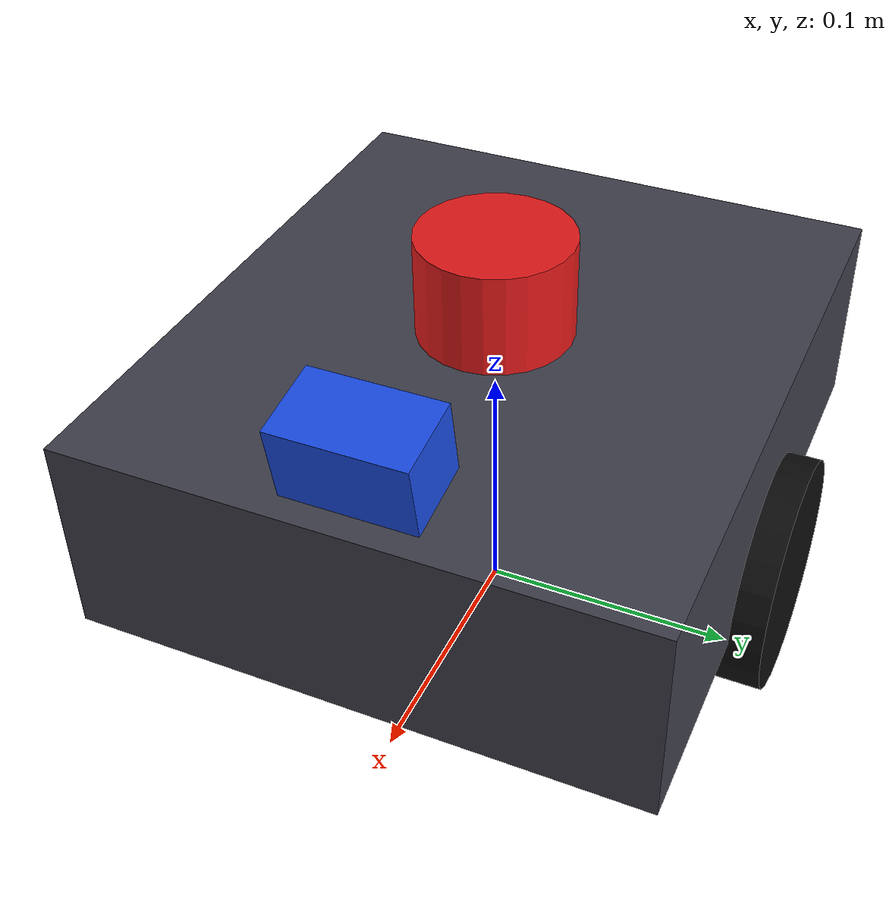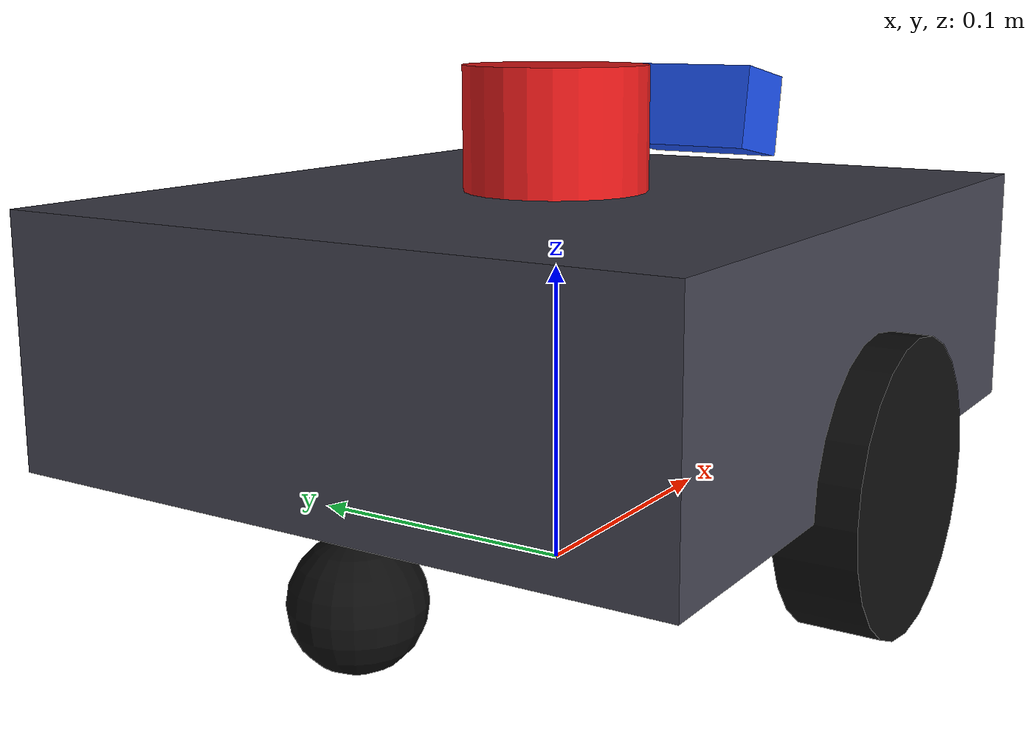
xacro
<?xml version="1.0"?>
<robot xmlns:xacro="http://www.ros.org/wiki/xacro" name="round3_rover">
  <xacro:property name="base_len" value="0.25"/>
  <xacro:property name="base_wid" value="0.22"/>
  <xacro:property name="base_hei" value="0.08"/>
  <xacro:property name="base_mass" value="3.0"/>
  <xacro:property name="wheel_rad" value="0.045"/>
  <xacro:property name="wheel_wid" value="0.025"/>
  <xacro:property name="wheel_mass" value="0.2"/>
  <xacro:property name="wheel_sep" value="0.22"/>
  <xacro:property name="caster_rad" value="0.02"/>
  <xacro:property name="cam_tilt" value="${10 * 3.14159265 / 180.0}"/>

  <material name="body_grey"><color rgba="0.25 0.25 0.3 1"/></material>
  <material name="wheel_black"><color rgba="0.05 0.05 0.05 1"/></material>
  <material name="cam_blue"><color rgba="0.1 0.3 0.9 1"/></material>
  <material name="lidar_red"><color rgba="0.9 0.1 0.1 1"/></material>

  <xacro:macro name="inertial_box" params="mass x y z">
    <inertial>
      <mass value="${mass}"/>
      <inertia ixx="${mass/12*(y*y+z*z)}" ixy="0" ixz="0" iyy="${mass/12*(x*x+z*z)}" iyz="0" izz="${mass/12*(x*x+y*y)}"/>
    </inertial>
  </xacro:macro>

  <xacro:macro name="inertial_cyl" params="mass r h">
    <inertial>
      <mass value="${mass}"/>
      <inertia ixx="${mass/12*(3*r*r+h*h)}" ixy="0" ixz="0" iyy="${mass/12*(3*r*r+h*h)}" iyz="0" izz="${mass/2*r*r}"/>
    </inertial>
  </xacro:macro>

  <xacro:macro name="inertial_sph" params="mass r">
    <inertial>
      <mass value="${mass}"/>
      <inertia ixx="${2*mass*r*r/5}" ixy="0" ixz="0" iyy="${2*mass*r*r/5}" iyz="0" izz="${2*mass*r*r/5}"/>
    </inertial>
  </xacro:macro>

  <link name="base_footprint"/>

  <link name="base_link">
    <xacro:inertial_box mass="${base_mass}" x="${base_len}" y="${base_wid}" z="${base_hei}"/>
    <visual>
      <geometry><box size="${base_len} ${base_wid} ${base_hei}"/></geometry>
      <material name="body_grey"/>
    </visual>
    <collision>
      <geometry><box size="${base_len} ${base_wid} ${base_hei}"/></geometry>
    </collision>
  </link>

  <joint name="base_footprint_to_base" type="fixed">
    <parent link="base_footprint"/>
    <child link="base_link"/>
    <origin xyz="0 0 ${wheel_rad + base_hei/2}" rpy="0 0 0"/>
  </joint>

  <xacro:macro name="wheel" params="side y_sign">
    <link name="wheel_${side}">
      <xacro:inertial_cyl mass="${wheel_mass}" r="${wheel_rad}" h="${wheel_wid}"/>
      <visual>
        <origin xyz="0 0 0" rpy="1.5707963 0 0"/>
        <geometry><cylinder radius="${wheel_rad}" length="${wheel_wid}"/></geometry>
        <material name="wheel_black"/>
      </visual>
      <collision>
        <origin xyz="0 0 0" rpy="1.5707963 0 0"/>
        <geometry><cylinder radius="${wheel_rad}" length="${wheel_wid}"/></geometry>
      </collision>
    </link>
    <joint name="wheel_${side}_joint" type="continuous">
      <parent link="base_link"/>
      <child link="wheel_${side}"/>
      <origin xyz="0 ${y_sign*wheel_sep/2} ${-base_hei/2}" rpy="0 0 0"/>
      <axis xyz="0 1 0"/>
    </joint>
  </xacro:macro>
  <xacro:wheel side="left" y_sign="1"/>
  <xacro:wheel side="right" y_sign="-1"/>

  <link name="caster">
    <xacro:inertial_sph mass="0.05" r="${caster_rad}"/>
    <visual>
      <geometry><sphere radius="${caster_rad}"/></geometry>
      <material name="wheel_black"/>
    </visual>
    <collision>
      <geometry><sphere radius="${caster_rad}"/></geometry>
    </collision>
  </link>
  <joint name="caster_joint" type="fixed">
    <parent link="base_link"/>
    <child link="caster"/>
    <origin xyz="${-base_len/2 + caster_rad} 0 ${-base_hei/2 - (wheel_rad - caster_rad)}" rpy="0 0 0"/>
  </joint>

  <link name="camera_link">
    <xacro:inertial_box mass="0.05" x="0.03" y="0.05" z="0.03"/>
    <visual>
      <geometry><box size="0.03 0.05 0.03"/></geometry>
      <material name="cam_blue"/>
    </visual>
  </link>
  <joint name="camera_joint" type="fixed">
    <parent link="base_link"/>
    <child link="camera_link"/>
    <origin xyz="${base_len/2 - 0.02} 0 ${base_hei/2 + 0.02}" rpy="0 ${cam_tilt} 0"/>
  </joint>

  <link name="lidar_link">
    <xacro:inertial_cyl mass="0.1" r="0.03" h="0.04"/>
    <visual>
      <geometry><cylinder radius="0.03" length="0.04"/></geometry>
      <material name="lidar_red"/>
    </visual>
    <collision>
      <geometry><cylinder radius="0.03" length="0.04"/></geometry>
    </collision>
  </link>
  <joint name="lidar_joint" type="fixed">
    <parent link="base_link"/>
    <child link="lidar_link"/>
    <origin xyz="0 0 ${base_hei/2 + 0.02}" rpy="0 0 0"/>
  </joint>

  <link name="imu_link">
    <inertial>
      <mass value="0.01"/>
      <inertia ixx="1e-6" ixy="0" ixz="0" iyy="1e-6" iyz="0" izz="1e-6"/>
    </inertial>
  </link>
  <joint name="imu_joint" type="fixed">
    <parent link="base_link"/>
    <child link="imu_link"/>
    <origin xyz="0 0 0" rpy="0 0 0"/>
  </joint>

  <gazebo reference="wheel_left"><mu1>1.0</mu1><mu2>1.0</mu2></gazebo>
  <gazebo reference="wheel_right"><mu1>1.0</mu1><mu2>1.0</mu2></gazebo>
  <gazebo reference="caster"><mu1>0.0</mu1><mu2>0.0</mu2></gazebo>

  <gazebo>
    <plugin filename="gz-sim-diff-drive-system" name="gz::sim::systems::DiffDrive">
      <left_joint>wheel_left_joint</left_joint>
      <right_joint>wheel_right_joint</right_joint>
      <wheel_separation>${wheel_sep}</wheel_separation>
      <wheel_radius>${wheel_rad}</wheel_radius>
      <topic>cmd_vel</topic>
      <odom_topic>odom</odom_topic>
      <frame_id>odom</frame_id>
      <child_frame_id>base_footprint</child_frame_id>
      <odom_publish_frequency>30</odom_publish_frequency>
      <tf_topic>/tf</tf_topic>
    </plugin>
    <plugin filename="gz-sim-joint-state-publisher-system" name="gz::sim::systems::JointStatePublisher">
      <topic>joint_states</topic>
    </plugin>
  </gazebo>

  <gazebo reference="camera_link">
    <sensor name="camera" type="camera">
      <update_rate>10</update_rate>
      <topic>camera/image_raw</topic>
      <camera>
        <horizontal_fov>1.5184</horizontal_fov>
        <image><width>640</width><height>360</height><format>R8G8B8</format></image>
        <clip><near>0.05</near><far>8.0</far></clip>
      </camera>
      <always_on>true</always_on>
      <visualize>false</visualize>
    </sensor>
  </gazebo>

  <gazebo reference="lidar_link">
    <sensor name="lidar" type="gpu_lidar">
      <update_rate>10</update_rate>
      <topic>scan</topic>
      <lidar>
        <scan>
          <horizontal>
            <samples>360</samples>
            <resolution>1</resolution>
            <min_angle>-3.14159</min_angle>
            <max_angle>3.14159</max_angle>
          </horizontal>
        </scan>
        <range><min>0.08</min><max>6.0</max><resolution>0.01</resolution></range>
      </lidar>
      <always_on>true</always_on>
      <visualize>false</visualize>
    </sensor>
  </gazebo>

  <gazebo reference="imu_link">
    <sensor name="imu" type="imu">
      <update_rate>50</update_rate>
      <topic>imu</topic>
      <always_on>true</always_on>
    </sensor>
  </gazebo>
</robot>
